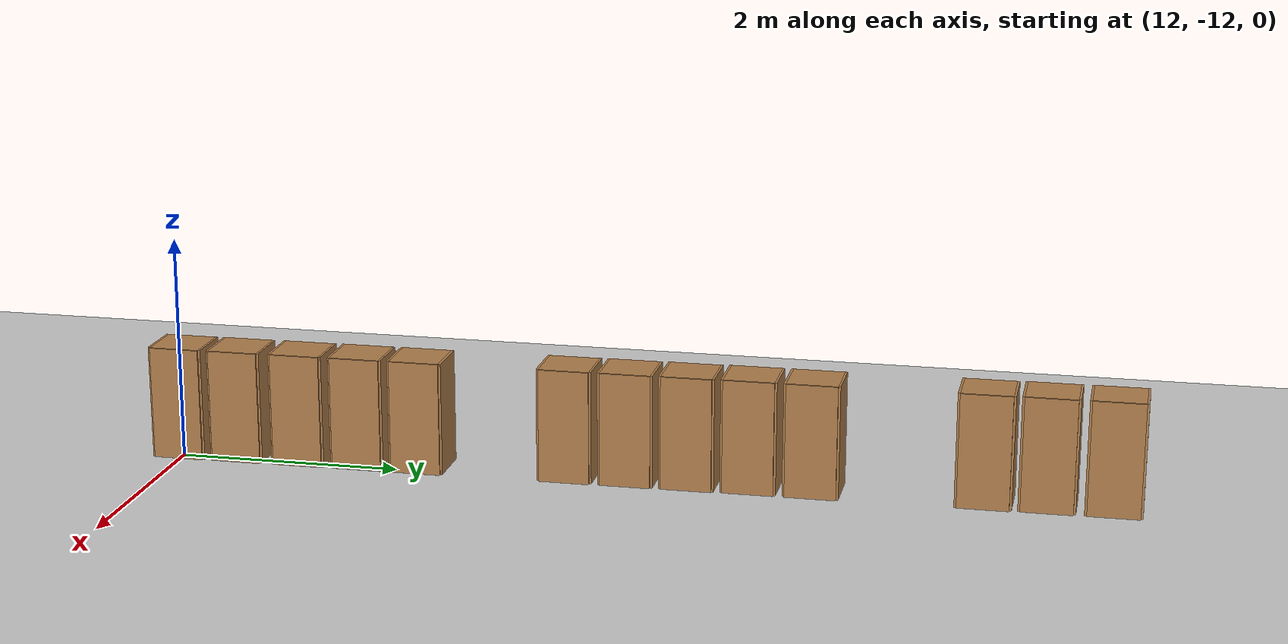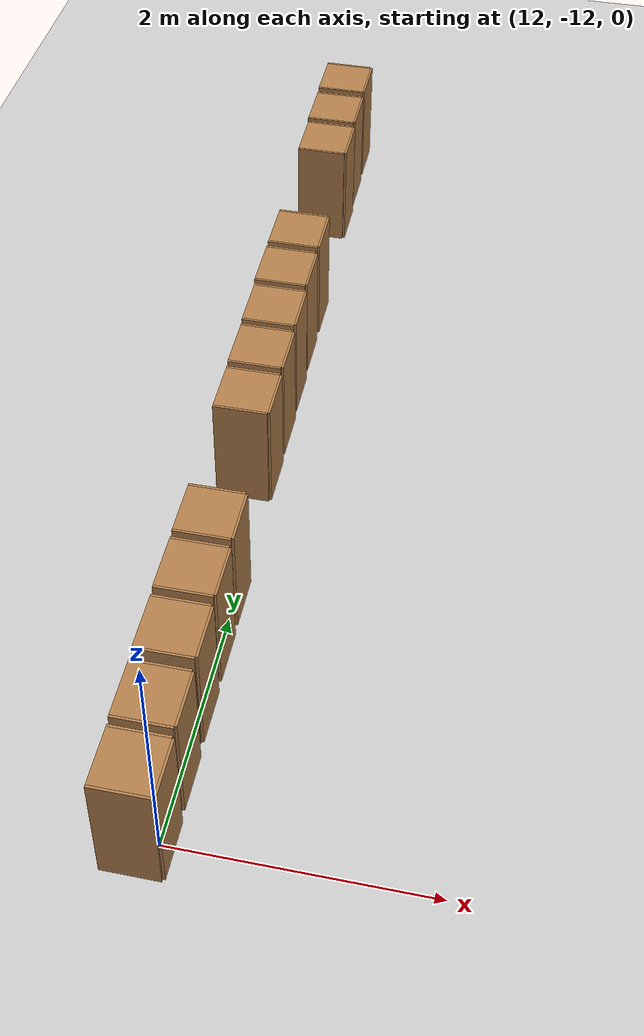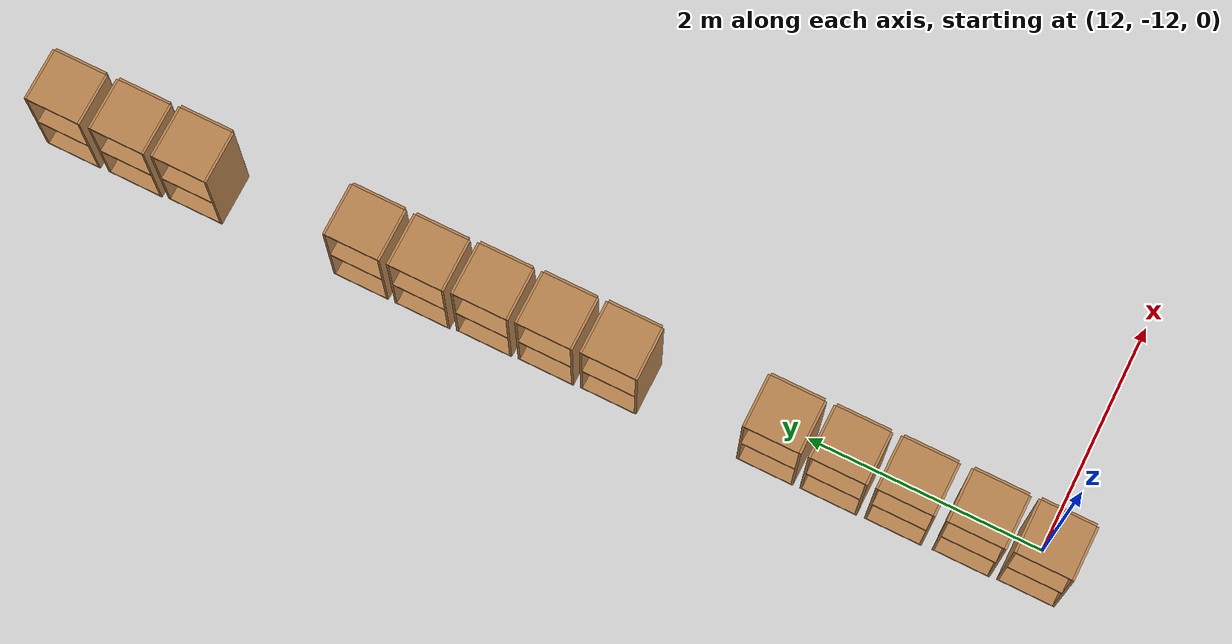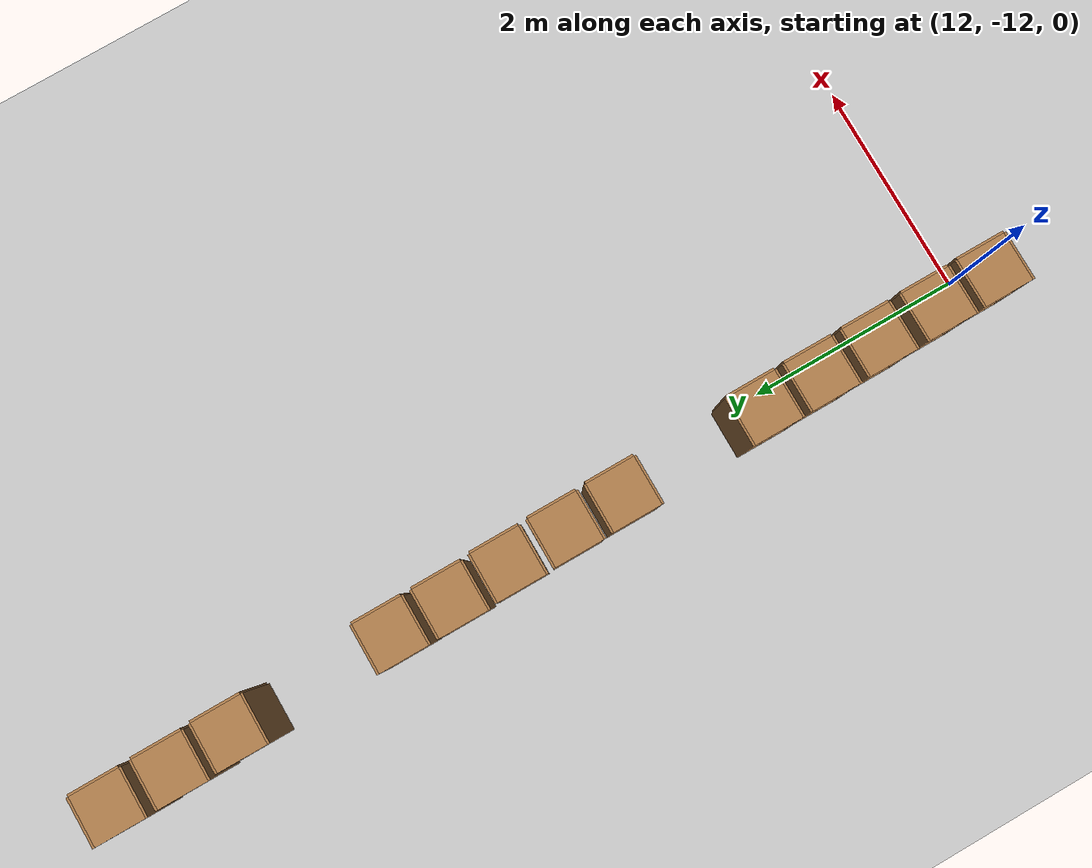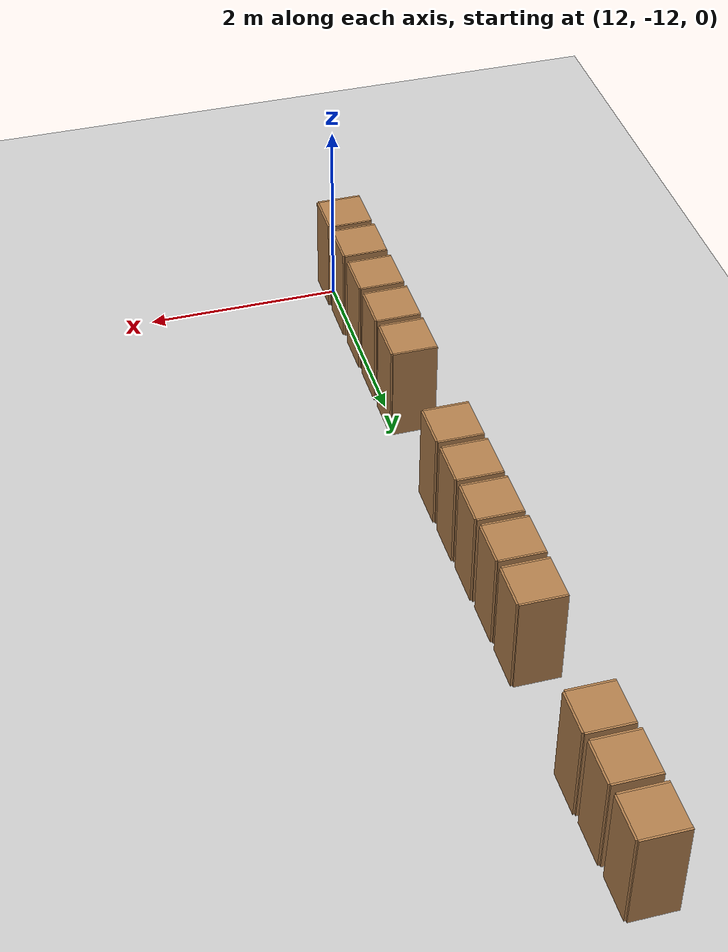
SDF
<sdf version="1.6">
 <world name="default">
  <model name="ground_plane">
   <static>1</static>
   <link name="link">
    <collision name="collision">
     <geometry><plane><normal>0 0 1</normal><size>100 100</size></plane></geometry>
     <surface><friction><ode><mu>100</mu><mu2>50</mu2></ode></friction></surface>
    </collision>
    <visual name="visual">
     <cast_shadows>0</cast_shadows>
     <geometry><plane><normal>0 0 1</normal><size>100 100</size></plane></geometry>
     <material>
      <script><uri>file://media/materials/scripts/gazebo.material</uri><name>Gazebo/Grey</name></script>
     </material>
    </visual>
   </link>
  </model>
  <model name="cabinet">
   <static>1</static>
   <link name="cabinet_bottom_plate">
    <inertial>
     <pose>0 0 -1 0 -0 0</pose>
     <inertia><ixx>2.05</ixx><ixy>0</ixy><ixz>0</ixz><iyy>2.05</iyy><iyz>0</iyz><izz>2.05</izz></inertia>
     <mass>25</mass>
    </inertial>
    <collision name="cabinet_bottom_plate_geom">
     <pose>0 0 0.01 0 -0 0</pose>
     <geometry><box><size>0.45 0.45 0.02</size></box></geometry>
    </collision>
    <visual name="cabinet_bottom_plate_geom_visual">
     <pose>0 0 0.01 0 -0 0</pose>
     <geometry><box><size>0.45 0.45 0.02</size></box></geometry>
     <material>
      <script><uri>file://media/materials/scripts/gazebo.material</uri><name>Gazebo/Wood</name></script>
     </material>
    </visual>
    <collision name="cabinet_bottom_plate_geom_cabinet_back_plate">
     <pose>0.235 0 0.51 0 -0 0</pose>
     <geometry><box><size>0.02 0.45 1.02</size></box></geometry>
    </collision>
    <visual name="cabinet_bottom_plate_geom_cabinet_back_plate_visual">
     <pose>0.235 0 0.51 0 -0 0</pose>
     <geometry><box><size>0.02 0.45 1.02</size></box></geometry>
     <material>
      <script><uri>file://media/materials/scripts/gazebo.material</uri><name>Gazebo/Wood</name></script>
     </material>
    </visual>
    <collision name="cabinet_bottom_plate_geom_cabinet_left_plate">
     <pose>0 0.235 0.51 0 -0 0</pose>
     <geometry><box><size>0.45 0.02 1.02</size></box></geometry>
    </collision>
    <visual name="cabinet_bottom_plate_geom_cabinet_left_plate_visual">
     <pose>0 0.235 0.51 0 -0 0</pose>
     <geometry><box><size>0.45 0.02 1.02</size></box></geometry>
     <material>
      <script><uri>file://media/materials/scripts/gazebo.material</uri><name>Gazebo/Wood</name></script>
     </material>
    </visual>
    <collision name="cabinet_bottom_plate_geom_cabinet_middle_plate">
     <pose>0 0 0.51 0 -0 0</pose>
     <geometry><box><size>0.45 0.45 0.02</size></box></geometry>
    </collision>
    <visual name="cabinet_bottom_plate_geom_cabinet_middle_plate_visual">
     <pose>0 0 0.51 0 -0 0</pose>
     <geometry><box><size>0.45 0.45 0.02</size></box></geometry>
     <material>
      <script><uri>file://media/materials/scripts/gazebo.material</uri><name>Gazebo/Wood</name></script>
     </material>
    </visual>
    <collision name="cabinet_bottom_plate_geom_cabinet_right_plate">
     <pose>0 -0.235 0.51 0 -0 0</pose>
     <geometry><box><size>0.45 0.02 1.02</size></box></geometry>
    </collision>
    <visual name="cabinet_bottom_plate_geom_cabinet_right_plate_visual">
     <pose>0 -0.235 0.51 0 -0 0</pose>
     <geometry><box><size>0.45 0.02 1.02</size></box></geometry>
     <material>
      <script><uri>file://media/materials/scripts/gazebo.material</uri><name>Gazebo/Wood</name></script>
     </material>
    </visual>
    <collision name="cabinet_bottom_plate_geom_cabinet_top_plate">
     <pose>0 0 1.01 0 -0 0</pose>
     <geometry><box><size>0.45 0.45 0.02</size></box></geometry>
    </collision>
    <visual name="cabinet_bottom_plate_geom_cabinet_top_plate_visual">
     <pose>0 0 1.01 0 -0 0</pose>
     <geometry><box><size>0.45 0.45 0.02</size></box></geometry>
     <material>
      <script><uri>file://media/materials/scripts/gazebo.material</uri><name>Gazebo/Wood</name></script>
     </material>
    </visual>
   </link>
   <pose>11.8643 -12.0202 0 0 -0 0</pose>
  </model>
  <model name="cabinet_clone">
   <static>1</static>
   <link name="cabinet_bottom_plate">
    <inertial>
     <pose>0 0 -1 0 -0 0</pose>
     <inertia><ixx>2.05</ixx><ixy>0</ixy><ixz>0</ixz><iyy>2.05</iyy><iyz>0</iyz><izz>2.05</izz></inertia>
     <mass>25</mass>
    </inertial>
    <collision name="cabinet_bottom_plate_geom">
     <pose>0 0 0.01 0 -0 0</pose>
     <geometry><box><size>0.45 0.45 0.02</size></box></geometry>
    </collision>
    <visual name="cabinet_bottom_plate_geom_visual">
     <pose>0 0 0.01 0 -0 0</pose>
     <geometry><box><size>0.45 0.45 0.02</size></box></geometry>
     <material>
      <script><uri>file://media/materials/scripts/gazebo.material</uri><name>Gazebo/Wood</name></script>
     </material>
    </visual>
    <collision name="cabinet_bottom_plate_geom_cabinet_back_plate">
     <pose>0.235 0 0.51 0 -0 0</pose>
     <geometry><box><size>0.02 0.45 1.02</size></box></geometry>
    </collision>
    <visual name="cabinet_bottom_plate_geom_cabinet_back_plate_visual">
     <pose>0.235 0 0.51 0 -0 0</pose>
     <geometry><box><size>0.02 0.45 1.02</size></box></geometry>
     <material>
      <script><uri>file://media/materials/scripts/gazebo.material</uri><name>Gazebo/Wood</name></script>
     </material>
    </visual>
    <collision name="cabinet_bottom_plate_geom_cabinet_left_plate">
     <pose>0 0.235 0.51 0 -0 0</pose>
     <geometry><box><size>0.45 0.02 1.02</size></box></geometry>
    </collision>
    <visual name="cabinet_bottom_plate_geom_cabinet_left_plate_visual">
     <pose>0 0.235 0.51 0 -0 0</pose>
     <geometry><box><size>0.45 0.02 1.02</size></box></geometry>
     <material>
      <script><uri>file://media/materials/scripts/gazebo.material</uri><name>Gazebo/Wood</name></script>
     </material>
    </visual>
    <collision name="cabinet_bottom_plate_geom_cabinet_middle_plate">
     <pose>0 0 0.51 0 -0 0</pose>
     <geometry><box><size>0.45 0.45 0.02</size></box></geometry>
    </collision>
    <visual name="cabinet_bottom_plate_geom_cabinet_middle_plate_visual">
     <pose>0 0 0.51 0 -0 0</pose>
     <geometry><box><size>0.45 0.45 0.02</size></box></geometry>
     <material>
      <script><uri>file://media/materials/scripts/gazebo.material</uri><name>Gazebo/Wood</name></script>
     </material>
    </visual>
    <collision name="cabinet_bottom_plate_geom_cabinet_right_plate">
     <pose>0 -0.235 0.51 0 -0 0</pose>
     <geometry><box><size>0.45 0.02 1.02</size></box></geometry>
    </collision>
    <visual name="cabinet_bottom_plate_geom_cabinet_right_plate_visual">
     <pose>0 -0.235 0.51 0 -0 0</pose>
     <geometry><box><size>0.45 0.02 1.02</size></box></geometry>
     <material>
      <script><uri>file://media/materials/scripts/gazebo.material</uri><name>Gazebo/Wood</name></script>
     </material>
    </visual>
    <collision name="cabinet_bottom_plate_geom_cabinet_top_plate">
     <pose>0 0 1.01 0 -0 0</pose>
     <geometry><box><size>0.45 0.45 0.02</size></box></geometry>
    </collision>
    <visual name="cabinet_bottom_plate_geom_cabinet_top_plate_visual">
     <pose>0 0 1.01 0 -0 0</pose>
     <geometry><box><size>0.45 0.45 0.02</size></box></geometry>
     <material>
      <script><uri>file://media/materials/scripts/gazebo.material</uri><name>Gazebo/Wood</name></script>
     </material>
    </visual>
   </link>
   <pose>11.8544 -11.4772 0 0 -0 0</pose>
  </model>
  <model name="cabinet_clone_0">
   <static>1</static>
   <link name="cabinet_bottom_plate">
    <inertial>
     <pose>0 0 -1 0 -0 0</pose>
     <inertia><ixx>2.05</ixx><ixy>0</ixy><ixz>0</ixz><iyy>2.05</iyy><iyz>0</iyz><izz>2.05</izz></inertia>
     <mass>25</mass>
    </inertial>
    <collision name="cabinet_bottom_plate_geom">
     <pose>0 0 0.01 0 -0 0</pose>
     <geometry><box><size>0.45 0.45 0.02</size></box></geometry>
    </collision>
    <visual name="cabinet_bottom_plate_geom_visual">
     <pose>0 0 0.01 0 -0 0</pose>
     <geometry><box><size>0.45 0.45 0.02</size></box></geometry>
     <material>
      <script><uri>file://media/materials/scripts/gazebo.material</uri><name>Gazebo/Wood</name></script>
     </material>
    </visual>
    <collision name="cabinet_bottom_plate_geom_cabinet_back_plate">
     <pose>0.235 0 0.51 0 -0 0</pose>
     <geometry><box><size>0.02 0.45 1.02</size></box></geometry>
    </collision>
    <visual name="cabinet_bottom_plate_geom_cabinet_back_plate_visual">
     <pose>0.235 0 0.51 0 -0 0</pose>
     <geometry><box><size>0.02 0.45 1.02</size></box></geometry>
     <material>
      <script><uri>file://media/materials/scripts/gazebo.material</uri><name>Gazebo/Wood</name></script>
     </material>
    </visual>
    <collision name="cabinet_bottom_plate_geom_cabinet_left_plate">
     <pose>0 0.235 0.51 0 -0 0</pose>
     <geometry><box><size>0.45 0.02 1.02</size></box></geometry>
    </collision>
    <visual name="cabinet_bottom_plate_geom_cabinet_left_plate_visual">
     <pose>0 0.235 0.51 0 -0 0</pose>
     <geometry><box><size>0.45 0.02 1.02</size></box></geometry>
     <material>
      <script><uri>file://media/materials/scripts/gazebo.material</uri><name>Gazebo/Wood</name></script>
     </material>
    </visual>
    <collision name="cabinet_bottom_plate_geom_cabinet_middle_plate">
     <pose>0 0 0.51 0 -0 0</pose>
     <geometry><box><size>0.45 0.45 0.02</size></box></geometry>
    </collision>
    <visual name="cabinet_bottom_plate_geom_cabinet_middle_plate_visual">
     <pose>0 0 0.51 0 -0 0</pose>
     <geometry><box><size>0.45 0.45 0.02</size></box></geometry>
     <material>
      <script><uri>file://media/materials/scripts/gazebo.material</uri><name>Gazebo/Wood</name></script>
     </material>
    </visual>
    <collision name="cabinet_bottom_plate_geom_cabinet_right_plate">
     <pose>0 -0.235 0.51 0 -0 0</pose>
     <geometry><box><size>0.45 0.02 1.02</size></box></geometry>
    </collision>
    <visual name="cabinet_bottom_plate_geom_cabinet_right_plate_visual">
     <pose>0 -0.235 0.51 0 -0 0</pose>
     <geometry><box><size>0.45 0.02 1.02</size></box></geometry>
     <material>
      <script><uri>file://media/materials/scripts/gazebo.material</uri><name>Gazebo/Wood</name></script>
     </material>
    </visual>
    <collision name="cabinet_bottom_plate_geom_cabinet_top_plate">
     <pose>0 0 1.01 0 -0 0</pose>
     <geometry><box><size>0.45 0.45 0.02</size></box></geometry>
    </collision>
    <visual name="cabinet_bottom_plate_geom_cabinet_top_plate_visual">
     <pose>0 0 1.01 0 -0 0</pose>
     <geometry><box><size>0.45 0.45 0.02</size></box></geometry>
     <material>
      <script><uri>file://media/materials/scripts/gazebo.material</uri><name>Gazebo/Wood</name></script>
     </material>
    </visual>
   </link>
   <pose>11.8448 -10.9033 0 0 -0 0</pose>
  </model>
  <model name="cabinet_clone_1">
   <static>1</static>
   <link name="cabinet_bottom_plate">
    <inertial>
     <pose>0 0 -1 0 -0 0</pose>
     <inertia><ixx>2.05</ixx><ixy>0</ixy><ixz>0</ixz><iyy>2.05</iyy><iyz>0</iyz><izz>2.05</izz></inertia>
     <mass>25</mass>
    </inertial>
    <collision name="cabinet_bottom_plate_geom">
     <pose>0 0 0.01 0 -0 0</pose>
     <geometry><box><size>0.45 0.45 0.02</size></box></geometry>
    </collision>
    <visual name="cabinet_bottom_plate_geom_visual">
     <pose>0 0 0.01 0 -0 0</pose>
     <geometry><box><size>0.45 0.45 0.02</size></box></geometry>
     <material>
      <script><uri>file://media/materials/scripts/gazebo.material</uri><name>Gazebo/Wood</name></script>
     </material>
    </visual>
    <collision name="cabinet_bottom_plate_geom_cabinet_back_plate">
     <pose>0.235 0 0.51 0 -0 0</pose>
     <geometry><box><size>0.02 0.45 1.02</size></box></geometry>
    </collision>
    <visual name="cabinet_bottom_plate_geom_cabinet_back_plate_visual">
     <pose>0.235 0 0.51 0 -0 0</pose>
     <geometry><box><size>0.02 0.45 1.02</size></box></geometry>
     <material>
      <script><uri>file://media/materials/scripts/gazebo.material</uri><name>Gazebo/Wood</name></script>
     </material>
    </visual>
    <collision name="cabinet_bottom_plate_geom_cabinet_left_plate">
     <pose>0 0.235 0.51 0 -0 0</pose>
     <geometry><box><size>0.45 0.02 1.02</size></box></geometry>
    </collision>
    <visual name="cabinet_bottom_plate_geom_cabinet_left_plate_visual">
     <pose>0 0.235 0.51 0 -0 0</pose>
     <geometry><box><size>0.45 0.02 1.02</size></box></geometry>
     <material>
      <script><uri>file://media/materials/scripts/gazebo.material</uri><name>Gazebo/Wood</name></script>
     </material>
    </visual>
    <collision name="cabinet_bottom_plate_geom_cabinet_middle_plate">
     <pose>0 0 0.51 0 -0 0</pose>
     <geometry><box><size>0.45 0.45 0.02</size></box></geometry>
    </collision>
    <visual name="cabinet_bottom_plate_geom_cabinet_middle_plate_visual">
     <pose>0 0 0.51 0 -0 0</pose>
     <geometry><box><size>0.45 0.45 0.02</size></box></geometry>
     <material>
      <script><uri>file://media/materials/scripts/gazebo.material</uri><name>Gazebo/Wood</name></script>
     </material>
    </visual>
    <collision name="cabinet_bottom_plate_geom_cabinet_right_plate">
     <pose>0 -0.235 0.51 0 -0 0</pose>
     <geometry><box><size>0.45 0.02 1.02</size></box></geometry>
    </collision>
    <visual name="cabinet_bottom_plate_geom_cabinet_right_plate_visual">
     <pose>0 -0.235 0.51 0 -0 0</pose>
     <geometry><box><size>0.45 0.02 1.02</size></box></geometry>
     <material>
      <script><uri>file://media/materials/scripts/gazebo.material</uri><name>Gazebo/Wood</name></script>
     </material>
    </visual>
    <collision name="cabinet_bottom_plate_geom_cabinet_top_plate">
     <pose>0 0 1.01 0 -0 0</pose>
     <geometry><box><size>0.45 0.45 0.02</size></box></geometry>
    </collision>
    <visual name="cabinet_bottom_plate_geom_cabinet_top_plate_visual">
     <pose>0 0 1.01 0 -0 0</pose>
     <geometry><box><size>0.45 0.45 0.02</size></box></geometry>
     <material>
      <script><uri>file://media/materials/scripts/gazebo.material</uri><name>Gazebo/Wood</name></script>
     </material>
    </visual>
   </link>
   <pose>11.8365 -10.3527 0 0 -0 0</pose>
  </model>
  <model name="cabinet_clone_2">
   <static>1</static>
   <link name="cabinet_bottom_plate">
    <inertial>
     <pose>0 0 -1 0 -0 0</pose>
     <inertia><ixx>2.05</ixx><ixy>0</ixy><ixz>0</ixz><iyy>2.05</iyy><iyz>0</iyz><izz>2.05</izz></inertia>
     <mass>25</mass>
    </inertial>
    <collision name="cabinet_bottom_plate_geom">
     <pose>0 0 0.01 0 -0 0</pose>
     <geometry><box><size>0.45 0.45 0.02</size></box></geometry>
    </collision>
    <visual name="cabinet_bottom_plate_geom_visual">
     <pose>0 0 0.01 0 -0 0</pose>
     <geometry><box><size>0.45 0.45 0.02</size></box></geometry>
     <material>
      <script><uri>file://media/materials/scripts/gazebo.material</uri><name>Gazebo/Wood</name></script>
     </material>
    </visual>
    <collision name="cabinet_bottom_plate_geom_cabinet_back_plate">
     <pose>0.235 0 0.51 0 -0 0</pose>
     <geometry><box><size>0.02 0.45 1.02</size></box></geometry>
    </collision>
    <visual name="cabinet_bottom_plate_geom_cabinet_back_plate_visual">
     <pose>0.235 0 0.51 0 -0 0</pose>
     <geometry><box><size>0.02 0.45 1.02</size></box></geometry>
     <material>
      <script><uri>file://media/materials/scripts/gazebo.material</uri><name>Gazebo/Wood</name></script>
     </material>
    </visual>
    <collision name="cabinet_bottom_plate_geom_cabinet_left_plate">
     <pose>0 0.235 0.51 0 -0 0</pose>
     <geometry><box><size>0.45 0.02 1.02</size></box></geometry>
    </collision>
    <visual name="cabinet_bottom_plate_geom_cabinet_left_plate_visual">
     <pose>0 0.235 0.51 0 -0 0</pose>
     <geometry><box><size>0.45 0.02 1.02</size></box></geometry>
     <material>
      <script><uri>file://media/materials/scripts/gazebo.material</uri><name>Gazebo/Wood</name></script>
     </material>
    </visual>
    <collision name="cabinet_bottom_plate_geom_cabinet_middle_plate">
     <pose>0 0 0.51 0 -0 0</pose>
     <geometry><box><size>0.45 0.45 0.02</size></box></geometry>
    </collision>
    <visual name="cabinet_bottom_plate_geom_cabinet_middle_plate_visual">
     <pose>0 0 0.51 0 -0 0</pose>
     <geometry><box><size>0.45 0.45 0.02</size></box></geometry>
     <material>
      <script><uri>file://media/materials/scripts/gazebo.material</uri><name>Gazebo/Wood</name></script>
     </material>
    </visual>
    <collision name="cabinet_bottom_plate_geom_cabinet_right_plate">
     <pose>0 -0.235 0.51 0 -0 0</pose>
     <geometry><box><size>0.45 0.02 1.02</size></box></geometry>
    </collision>
    <visual name="cabinet_bottom_plate_geom_cabinet_right_plate_visual">
     <pose>0 -0.235 0.51 0 -0 0</pose>
     <geometry><box><size>0.45 0.02 1.02</size></box></geometry>
     <material>
      <script><uri>file://media/materials/scripts/gazebo.material</uri><name>Gazebo/Wood</name></script>
     </material>
    </visual>
    <collision name="cabinet_bottom_plate_geom_cabinet_top_plate">
     <pose>0 0 1.01 0 -0 0</pose>
     <geometry><box><size>0.45 0.45 0.02</size></box></geometry>
    </collision>
    <visual name="cabinet_bottom_plate_geom_cabinet_top_plate_visual">
     <pose>0 0 1.01 0 -0 0</pose>
     <geometry><box><size>0.45 0.45 0.02</size></box></geometry>
     <material>
      <script><uri>file://media/materials/scripts/gazebo.material</uri><name>Gazebo/Wood</name></script>
     </material>
    </visual>
   </link>
   <pose>11.8308 -9.80863 0 0 -0 0</pose>
  </model>
  <model name="cabinet_clone_3">
   <static>1</static>
   <link name="cabinet_bottom_plate">
    <inertial>
     <pose>0 0 -1 0 -0 0</pose>
     <inertia><ixx>2.05</ixx><ixy>0</ixy><ixz>0</ixz><iyy>2.05</iyy><iyz>0</iyz><izz>2.05</izz></inertia>
     <mass>25</mass>
    </inertial>
    <collision name="cabinet_bottom_plate_geom">
     <pose>0 0 0.01 0 -0 0</pose>
     <geometry><box><size>0.45 0.45 0.02</size></box></geometry>
    </collision>
    <visual name="cabinet_bottom_plate_geom_visual">
     <pose>0 0 0.01 0 -0 0</pose>
     <geometry><box><size>0.45 0.45 0.02</size></box></geometry>
     <material>
      <script><uri>file://media/materials/scripts/gazebo.material</uri><name>Gazebo/Wood</name></script>
     </material>
    </visual>
    <collision name="cabinet_bottom_plate_geom_cabinet_back_plate">
     <pose>0.235 0 0.51 0 -0 0</pose>
     <geometry><box><size>0.02 0.45 1.02</size></box></geometry>
    </collision>
    <visual name="cabinet_bottom_plate_geom_cabinet_back_plate_visual">
     <pose>0.235 0 0.51 0 -0 0</pose>
     <geometry><box><size>0.02 0.45 1.02</size></box></geometry>
     <material>
      <script><uri>file://media/materials/scripts/gazebo.material</uri><name>Gazebo/Wood</name></script>
     </material>
    </visual>
    <collision name="cabinet_bottom_plate_geom_cabinet_left_plate">
     <pose>0 0.235 0.51 0 -0 0</pose>
     <geometry><box><size>0.45 0.02 1.02</size></box></geometry>
    </collision>
    <visual name="cabinet_bottom_plate_geom_cabinet_left_plate_visual">
     <pose>0 0.235 0.51 0 -0 0</pose>
     <geometry><box><size>0.45 0.02 1.02</size></box></geometry>
     <material>
      <script><uri>file://media/materials/scripts/gazebo.material</uri><name>Gazebo/Wood</name></script>
     </material>
    </visual>
    <collision name="cabinet_bottom_plate_geom_cabinet_middle_plate">
     <pose>0 0 0.51 0 -0 0</pose>
     <geometry><box><size>0.45 0.45 0.02</size></box></geometry>
    </collision>
    <visual name="cabinet_bottom_plate_geom_cabinet_middle_plate_visual">
     <pose>0 0 0.51 0 -0 0</pose>
     <geometry><box><size>0.45 0.45 0.02</size></box></geometry>
     <material>
      <script><uri>file://media/materials/scripts/gazebo.material</uri><name>Gazebo/Wood</name></script>
     </material>
    </visual>
    <collision name="cabinet_bottom_plate_geom_cabinet_right_plate">
     <pose>0 -0.235 0.51 0 -0 0</pose>
     <geometry><box><size>0.45 0.02 1.02</size></box></geometry>
    </collision>
    <visual name="cabinet_bottom_plate_geom_cabinet_right_plate_visual">
     <pose>0 -0.235 0.51 0 -0 0</pose>
     <geometry><box><size>0.45 0.02 1.02</size></box></geometry>
     <material>
      <script><uri>file://media/materials/scripts/gazebo.material</uri><name>Gazebo/Wood</name></script>
     </material>
    </visual>
    <collision name="cabinet_bottom_plate_geom_cabinet_top_plate">
     <pose>0 0 1.01 0 -0 0</pose>
     <geometry><box><size>0.45 0.45 0.02</size></box></geometry>
    </collision>
    <visual name="cabinet_bottom_plate_geom_cabinet_top_plate_visual">
     <pose>0 0 1.01 0 -0 0</pose>
     <geometry><box><size>0.45 0.45 0.02</size></box></geometry>
     <material>
      <script><uri>file://media/materials/scripts/gazebo.material</uri><name>Gazebo/Wood</name></script>
     </material>
    </visual>
   </link>
   <pose>11.797 -8.46545 0 0 -0 0</pose>
  </model>
  <model name="cabinet_clone_4">
   <static>1</static>
   <link name="cabinet_bottom_plate">
    <inertial>
     <pose>0 0 -1 0 -0 0</pose>
     <inertia><ixx>2.05</ixx><ixy>0</ixy><ixz>0</ixz><iyy>2.05</iyy><iyz>0</iyz><izz>2.05</izz></inertia>
     <mass>25</mass>
    </inertial>
    <collision name="cabinet_bottom_plate_geom">
     <pose>0 0 0.01 0 -0 0</pose>
     <geometry><box><size>0.45 0.45 0.02</size></box></geometry>
    </collision>
    <visual name="cabinet_bottom_plate_geom_visual">
     <pose>0 0 0.01 0 -0 0</pose>
     <geometry><box><size>0.45 0.45 0.02</size></box></geometry>
     <material>
      <script><uri>file://media/materials/scripts/gazebo.material</uri><name>Gazebo/Wood</name></script>
     </material>
    </visual>
    <collision name="cabinet_bottom_plate_geom_cabinet_back_plate">
     <pose>0.235 0 0.51 0 -0 0</pose>
     <geometry><box><size>0.02 0.45 1.02</size></box></geometry>
    </collision>
    <visual name="cabinet_bottom_plate_geom_cabinet_back_plate_visual">
     <pose>0.235 0 0.51 0 -0 0</pose>
     <geometry><box><size>0.02 0.45 1.02</size></box></geometry>
     <material>
      <script><uri>file://media/materials/scripts/gazebo.material</uri><name>Gazebo/Wood</name></script>
     </material>
    </visual>
    <collision name="cabinet_bottom_plate_geom_cabinet_left_plate">
     <pose>0 0.235 0.51 0 -0 0</pose>
     <geometry><box><size>0.45 0.02 1.02</size></box></geometry>
    </collision>
    <visual name="cabinet_bottom_plate_geom_cabinet_left_plate_visual">
     <pose>0 0.235 0.51 0 -0 0</pose>
     <geometry><box><size>0.45 0.02 1.02</size></box></geometry>
     <material>
      <script><uri>file://media/materials/scripts/gazebo.material</uri><name>Gazebo/Wood</name></script>
     </material>
    </visual>
    <collision name="cabinet_bottom_plate_geom_cabinet_middle_plate">
     <pose>0 0 0.51 0 -0 0</pose>
     <geometry><box><size>0.45 0.45 0.02</size></box></geometry>
    </collision>
    <visual name="cabinet_bottom_plate_geom_cabinet_middle_plate_visual">
     <pose>0 0 0.51 0 -0 0</pose>
     <geometry><box><size>0.45 0.45 0.02</size></box></geometry>
     <material>
      <script><uri>file://media/materials/scripts/gazebo.material</uri><name>Gazebo/Wood</name></script>
     </material>
    </visual>
    <collision name="cabinet_bottom_plate_geom_cabinet_right_plate">
     <pose>0 -0.235 0.51 0 -0 0</pose>
     <geometry><box><size>0.45 0.02 1.02</size></box></geometry>
    </collision>
    <visual name="cabinet_bottom_plate_geom_cabinet_right_plate_visual">
     <pose>0 -0.235 0.51 0 -0 0</pose>
     <geometry><box><size>0.45 0.02 1.02</size></box></geometry>
     <material>
      <script><uri>file://media/materials/scripts/gazebo.material</uri><name>Gazebo/Wood</name></script>
     </material>
    </visual>
    <collision name="cabinet_bottom_plate_geom_cabinet_top_plate">
     <pose>0 0 1.01 0 -0 0</pose>
     <geometry><box><size>0.45 0.45 0.02</size></box></geometry>
    </collision>
    <visual name="cabinet_bottom_plate_geom_cabinet_top_plate_visual">
     <pose>0 0 1.01 0 -0 0</pose>
     <geometry><box><size>0.45 0.45 0.02</size></box></geometry>
     <material>
      <script><uri>file://media/materials/scripts/gazebo.material</uri><name>Gazebo/Wood</name></script>
     </material>
    </visual>
   </link>
   <pose>11.788 -7.92146 0 0 -0 0</pose>
  </model>
  <model name="cabinet_clone_5">
   <static>1</static>
   <link name="cabinet_bottom_plate">
    <inertial>
     <pose>0 0 -1 0 -0 0</pose>
     <inertia><ixx>2.05</ixx><ixy>0</ixy><ixz>0</ixz><iyy>2.05</iyy><iyz>0</iyz><izz>2.05</izz></inertia>
     <mass>25</mass>
    </inertial>
    <collision name="cabinet_bottom_plate_geom">
     <pose>0 0 0.01 0 -0 0</pose>
     <geometry><box><size>0.45 0.45 0.02</size></box></geometry>
    </collision>
    <visual name="cabinet_bottom_plate_geom_visual">
     <pose>0 0 0.01 0 -0 0</pose>
     <geometry><box><size>0.45 0.45 0.02</size></box></geometry>
     <material>
      <script><uri>file://media/materials/scripts/gazebo.material</uri><name>Gazebo/Wood</name></script>
     </material>
    </visual>
    <collision name="cabinet_bottom_plate_geom_cabinet_back_plate">
     <pose>0.235 0 0.51 0 -0 0</pose>
     <geometry><box><size>0.02 0.45 1.02</size></box></geometry>
    </collision>
    <visual name="cabinet_bottom_plate_geom_cabinet_back_plate_visual">
     <pose>0.235 0 0.51 0 -0 0</pose>
     <geometry><box><size>0.02 0.45 1.02</size></box></geometry>
     <material>
      <script><uri>file://media/materials/scripts/gazebo.material</uri><name>Gazebo/Wood</name></script>
     </material>
    </visual>
    <collision name="cabinet_bottom_plate_geom_cabinet_left_plate">
     <pose>0 0.235 0.51 0 -0 0</pose>
     <geometry><box><size>0.45 0.02 1.02</size></box></geometry>
    </collision>
    <visual name="cabinet_bottom_plate_geom_cabinet_left_plate_visual">
     <pose>0 0.235 0.51 0 -0 0</pose>
     <geometry><box><size>0.45 0.02 1.02</size></box></geometry>
     <material>
      <script><uri>file://media/materials/scripts/gazebo.material</uri><name>Gazebo/Wood</name></script>
     </material>
    </visual>
    <collision name="cabinet_bottom_plate_geom_cabinet_middle_plate">
     <pose>0 0 0.51 0 -0 0</pose>
     <geometry><box><size>0.45 0.45 0.02</size></box></geometry>
    </collision>
    <visual name="cabinet_bottom_plate_geom_cabinet_middle_plate_visual">
     <pose>0 0 0.51 0 -0 0</pose>
     <geometry><box><size>0.45 0.45 0.02</size></box></geometry>
     <material>
      <script><uri>file://media/materials/scripts/gazebo.material</uri><name>Gazebo/Wood</name></script>
     </material>
    </visual>
    <collision name="cabinet_bottom_plate_geom_cabinet_right_plate">
     <pose>0 -0.235 0.51 0 -0 0</pose>
     <geometry><box><size>0.45 0.02 1.02</size></box></geometry>
    </collision>
    <visual name="cabinet_bottom_plate_geom_cabinet_right_plate_visual">
     <pose>0 -0.235 0.51 0 -0 0</pose>
     <geometry><box><size>0.45 0.02 1.02</size></box></geometry>
     <material>
      <script><uri>file://media/materials/scripts/gazebo.material</uri><name>Gazebo/Wood</name></script>
     </material>
    </visual>
    <collision name="cabinet_bottom_plate_geom_cabinet_top_plate">
     <pose>0 0 1.01 0 -0 0</pose>
     <geometry><box><size>0.45 0.45 0.02</size></box></geometry>
    </collision>
    <visual name="cabinet_bottom_plate_geom_cabinet_top_plate_visual">
     <pose>0 0 1.01 0 -0 0</pose>
     <geometry><box><size>0.45 0.45 0.02</size></box></geometry>
     <material>
      <script><uri>file://media/materials/scripts/gazebo.material</uri><name>Gazebo/Wood</name></script>
     </material>
    </visual>
   </link>
   <pose>11.7775 -7.38238 0 0 -0 0</pose>
  </model>
  <model name="cabinet_clone_6">
   <static>1</static>
   <link name="cabinet_bottom_plate">
    <inertial>
     <pose>0 0 -1 0 -0 0</pose>
     <inertia><ixx>2.05</ixx><ixy>0</ixy><ixz>0</ixz><iyy>2.05</iyy><iyz>0</iyz><izz>2.05</izz></inertia>
     <mass>25</mass>
    </inertial>
    <collision name="cabinet_bottom_plate_geom">
     <pose>0 0 0.01 0 -0 0</pose>
     <geometry><box><size>0.45 0.45 0.02</size></box></geometry>
    </collision>
    <visual name="cabinet_bottom_plate_geom_visual">
     <pose>0 0 0.01 0 -0 0</pose>
     <geometry><box><size>0.45 0.45 0.02</size></box></geometry>
     <material>
      <script><uri>file://media/materials/scripts/gazebo.material</uri><name>Gazebo/Wood</name></script>
     </material>
    </visual>
    <collision name="cabinet_bottom_plate_geom_cabinet_back_plate">
     <pose>0.235 0 0.51 0 -0 0</pose>
     <geometry><box><size>0.02 0.45 1.02</size></box></geometry>
    </collision>
    <visual name="cabinet_bottom_plate_geom_cabinet_back_plate_visual">
     <pose>0.235 0 0.51 0 -0 0</pose>
     <geometry><box><size>0.02 0.45 1.02</size></box></geometry>
     <material>
      <script><uri>file://media/materials/scripts/gazebo.material</uri><name>Gazebo/Wood</name></script>
     </material>
    </visual>
    <collision name="cabinet_bottom_plate_geom_cabinet_left_plate">
     <pose>0 0.235 0.51 0 -0 0</pose>
     <geometry><box><size>0.45 0.02 1.02</size></box></geometry>
    </collision>
    <visual name="cabinet_bottom_plate_geom_cabinet_left_plate_visual">
     <pose>0 0.235 0.51 0 -0 0</pose>
     <geometry><box><size>0.45 0.02 1.02</size></box></geometry>
     <material>
      <script><uri>file://media/materials/scripts/gazebo.material</uri><name>Gazebo/Wood</name></script>
     </material>
    </visual>
    <collision name="cabinet_bottom_plate_geom_cabinet_middle_plate">
     <pose>0 0 0.51 0 -0 0</pose>
     <geometry><box><size>0.45 0.45 0.02</size></box></geometry>
    </collision>
    <visual name="cabinet_bottom_plate_geom_cabinet_middle_plate_visual">
     <pose>0 0 0.51 0 -0 0</pose>
     <geometry><box><size>0.45 0.45 0.02</size></box></geometry>
     <material>
      <script><uri>file://media/materials/scripts/gazebo.material</uri><name>Gazebo/Wood</name></script>
     </material>
    </visual>
    <collision name="cabinet_bottom_plate_geom_cabinet_right_plate">
     <pose>0 -0.235 0.51 0 -0 0</pose>
     <geometry><box><size>0.45 0.02 1.02</size></box></geometry>
    </collision>
    <visual name="cabinet_bottom_plate_geom_cabinet_right_plate_visual">
     <pose>0 -0.235 0.51 0 -0 0</pose>
     <geometry><box><size>0.45 0.02 1.02</size></box></geometry>
     <material>
      <script><uri>file://media/materials/scripts/gazebo.material</uri><name>Gazebo/Wood</name></script>
     </material>
    </visual>
    <collision name="cabinet_bottom_plate_geom_cabinet_top_plate">
     <pose>0 0 1.01 0 -0 0</pose>
     <geometry><box><size>0.45 0.45 0.02</size></box></geometry>
    </collision>
    <visual name="cabinet_bottom_plate_geom_cabinet_top_plate_visual">
     <pose>0 0 1.01 0 -0 0</pose>
     <geometry><box><size>0.45 0.45 0.02</size></box></geometry>
     <material>
      <script><uri>file://media/materials/scripts/gazebo.material</uri><name>Gazebo/Wood</name></script>
     </material>
    </visual>
   </link>
   <pose>11.7628 -6.84125 0 0 -0 0</pose>
  </model>
  <model name="cabinet_clone_7">
   <static>1</static>
   <link name="cabinet_bottom_plate">
    <inertial>
     <pose>0 0 -1 0 -0 0</pose>
     <inertia><ixx>2.05</ixx><ixy>0</ixy><ixz>0</ixz><iyy>2.05</iyy><iyz>0</iyz><izz>2.05</izz></inertia>
     <mass>25</mass>
    </inertial>
    <collision name="cabinet_bottom_plate_geom">
     <pose>0 0 0.01 0 -0 0</pose>
     <geometry><box><size>0.45 0.45 0.02</size></box></geometry>
    </collision>
    <visual name="cabinet_bottom_plate_geom_visual">
     <pose>0 0 0.01 0 -0 0</pose>
     <geometry><box><size>0.45 0.45 0.02</size></box></geometry>
     <material>
      <script><uri>file://media/materials/scripts/gazebo.material</uri><name>Gazebo/Wood</name></script>
     </material>
    </visual>
    <collision name="cabinet_bottom_plate_geom_cabinet_back_plate">
     <pose>0.235 0 0.51 0 -0 0</pose>
     <geometry><box><size>0.02 0.45 1.02</size></box></geometry>
    </collision>
    <visual name="cabinet_bottom_plate_geom_cabinet_back_plate_visual">
     <pose>0.235 0 0.51 0 -0 0</pose>
     <geometry><box><size>0.02 0.45 1.02</size></box></geometry>
     <material>
      <script><uri>file://media/materials/scripts/gazebo.material</uri><name>Gazebo/Wood</name></script>
     </material>
    </visual>
    <collision name="cabinet_bottom_plate_geom_cabinet_left_plate">
     <pose>0 0.235 0.51 0 -0 0</pose>
     <geometry><box><size>0.45 0.02 1.02</size></box></geometry>
    </collision>
    <visual name="cabinet_bottom_plate_geom_cabinet_left_plate_visual">
     <pose>0 0.235 0.51 0 -0 0</pose>
     <geometry><box><size>0.45 0.02 1.02</size></box></geometry>
     <material>
      <script><uri>file://media/materials/scripts/gazebo.material</uri><name>Gazebo/Wood</name></script>
     </material>
    </visual>
    <collision name="cabinet_bottom_plate_geom_cabinet_middle_plate">
     <pose>0 0 0.51 0 -0 0</pose>
     <geometry><box><size>0.45 0.45 0.02</size></box></geometry>
    </collision>
    <visual name="cabinet_bottom_plate_geom_cabinet_middle_plate_visual">
     <pose>0 0 0.51 0 -0 0</pose>
     <geometry><box><size>0.45 0.45 0.02</size></box></geometry>
     <material>
      <script><uri>file://media/materials/scripts/gazebo.material</uri><name>Gazebo/Wood</name></script>
     </material>
    </visual>
    <collision name="cabinet_bottom_plate_geom_cabinet_right_plate">
     <pose>0 -0.235 0.51 0 -0 0</pose>
     <geometry><box><size>0.45 0.02 1.02</size></box></geometry>
    </collision>
    <visual name="cabinet_bottom_plate_geom_cabinet_right_plate_visual">
     <pose>0 -0.235 0.51 0 -0 0</pose>
     <geometry><box><size>0.45 0.02 1.02</size></box></geometry>
     <material>
      <script><uri>file://media/materials/scripts/gazebo.material</uri><name>Gazebo/Wood</name></script>
     </material>
    </visual>
    <collision name="cabinet_bottom_plate_geom_cabinet_top_plate">
     <pose>0 0 1.01 0 -0 0</pose>
     <geometry><box><size>0.45 0.45 0.02</size></box></geometry>
    </collision>
    <visual name="cabinet_bottom_plate_geom_cabinet_top_plate_visual">
     <pose>0 0 1.01 0 -0 0</pose>
     <geometry><box><size>0.45 0.45 0.02</size></box></geometry>
     <material>
      <script><uri>file://media/materials/scripts/gazebo.material</uri><name>Gazebo/Wood</name></script>
     </material>
    </visual>
   </link>
   <pose>11.7605 -6.295 0 0 -0 0</pose>
  </model>
  <model name="cabinet_clone_8">
   <static>1</static>
   <link name="cabinet_bottom_plate">
    <inertial>
     <pose>0 0 -1 0 -0 0</pose>
     <inertia><ixx>2.05</ixx><ixy>0</ixy><ixz>0</ixz><iyy>2.05</iyy><iyz>0</iyz><izz>2.05</izz></inertia>
     <mass>25</mass>
    </inertial>
    <collision name="cabinet_bottom_plate_geom">
     <pose>0 0 0.01 0 -0 0</pose>
     <geometry><box><size>0.45 0.45 0.02</size></box></geometry>
    </collision>
    <visual name="cabinet_bottom_plate_geom_visual">
     <pose>0 0 0.01 0 -0 0</pose>
     <geometry><box><size>0.45 0.45 0.02</size></box></geometry>
     <material>
      <script><uri>file://media/materials/scripts/gazebo.material</uri><name>Gazebo/Wood</name></script>
     </material>
    </visual>
    <collision name="cabinet_bottom_plate_geom_cabinet_back_plate">
     <pose>0.235 0 0.51 0 -0 0</pose>
     <geometry><box><size>0.02 0.45 1.02</size></box></geometry>
    </collision>
    <visual name="cabinet_bottom_plate_geom_cabinet_back_plate_visual">
     <pose>0.235 0 0.51 0 -0 0</pose>
     <geometry><box><size>0.02 0.45 1.02</size></box></geometry>
     <material>
      <script><uri>file://media/materials/scripts/gazebo.material</uri><name>Gazebo/Wood</name></script>
     </material>
    </visual>
    <collision name="cabinet_bottom_plate_geom_cabinet_left_plate">
     <pose>0 0.235 0.51 0 -0 0</pose>
     <geometry><box><size>0.45 0.02 1.02</size></box></geometry>
    </collision>
    <visual name="cabinet_bottom_plate_geom_cabinet_left_plate_visual">
     <pose>0 0.235 0.51 0 -0 0</pose>
     <geometry><box><size>0.45 0.02 1.02</size></box></geometry>
     <material>
      <script><uri>file://media/materials/scripts/gazebo.material</uri><name>Gazebo/Wood</name></script>
     </material>
    </visual>
    <collision name="cabinet_bottom_plate_geom_cabinet_middle_plate">
     <pose>0 0 0.51 0 -0 0</pose>
     <geometry><box><size>0.45 0.45 0.02</size></box></geometry>
    </collision>
    <visual name="cabinet_bottom_plate_geom_cabinet_middle_plate_visual">
     <pose>0 0 0.51 0 -0 0</pose>
     <geometry><box><size>0.45 0.45 0.02</size></box></geometry>
     <material>
      <script><uri>file://media/materials/scripts/gazebo.material</uri><name>Gazebo/Wood</name></script>
     </material>
    </visual>
    <collision name="cabinet_bottom_plate_geom_cabinet_right_plate">
     <pose>0 -0.235 0.51 0 -0 0</pose>
     <geometry><box><size>0.45 0.02 1.02</size></box></geometry>
    </collision>
    <visual name="cabinet_bottom_plate_geom_cabinet_right_plate_visual">
     <pose>0 -0.235 0.51 0 -0 0</pose>
     <geometry><box><size>0.45 0.02 1.02</size></box></geometry>
     <material>
      <script><uri>file://media/materials/scripts/gazebo.material</uri><name>Gazebo/Wood</name></script>
     </material>
    </visual>
    <collision name="cabinet_bottom_plate_geom_cabinet_top_plate">
     <pose>0 0 1.01 0 -0 0</pose>
     <geometry><box><size>0.45 0.45 0.02</size></box></geometry>
    </collision>
    <visual name="cabinet_bottom_plate_geom_cabinet_top_plate_visual">
     <pose>0 0 1.01 0 -0 0</pose>
     <geometry><box><size>0.45 0.45 0.02</size></box></geometry>
     <material>
      <script><uri>file://media/materials/scripts/gazebo.material</uri><name>Gazebo/Wood</name></script>
     </material>
    </visual>
   </link>
   <pose>11.7235 -4.8178 0 0 -0 0</pose>
  </model>
  <model name="cabinet_clone_9">
   <static>1</static>
   <link name="cabinet_bottom_plate">
    <inertial>
     <pose>0 0 -1 0 -0 0</pose>
     <inertia><ixx>2.05</ixx><ixy>0</ixy><ixz>0</ixz><iyy>2.05</iyy><iyz>0</iyz><izz>2.05</izz></inertia>
     <mass>25</mass>
    </inertial>
    <collision name="cabinet_bottom_plate_geom">
     <pose>0 0 0.01 0 -0 0</pose>
     <geometry><box><size>0.45 0.45 0.02</size></box></geometry>
    </collision>
    <visual name="cabinet_bottom_plate_geom_visual">
     <pose>0 0 0.01 0 -0 0</pose>
     <geometry><box><size>0.45 0.45 0.02</size></box></geometry>
     <material>
      <script><uri>file://media/materials/scripts/gazebo.material</uri><name>Gazebo/Wood</name></script>
     </material>
    </visual>
    <collision name="cabinet_bottom_plate_geom_cabinet_back_plate">
     <pose>0.235 0 0.51 0 -0 0</pose>
     <geometry><box><size>0.02 0.45 1.02</size></box></geometry>
    </collision>
    <visual name="cabinet_bottom_plate_geom_cabinet_back_plate_visual">
     <pose>0.235 0 0.51 0 -0 0</pose>
     <geometry><box><size>0.02 0.45 1.02</size></box></geometry>
     <material>
      <script><uri>file://media/materials/scripts/gazebo.material</uri><name>Gazebo/Wood</name></script>
     </material>
    </visual>
    <collision name="cabinet_bottom_plate_geom_cabinet_left_plate">
     <pose>0 0.235 0.51 0 -0 0</pose>
     <geometry><box><size>0.45 0.02 1.02</size></box></geometry>
    </collision>
    <visual name="cabinet_bottom_plate_geom_cabinet_left_plate_visual">
     <pose>0 0.235 0.51 0 -0 0</pose>
     <geometry><box><size>0.45 0.02 1.02</size></box></geometry>
     <material>
      <script><uri>file://media/materials/scripts/gazebo.material</uri><name>Gazebo/Wood</name></script>
     </material>
    </visual>
    <collision name="cabinet_bottom_plate_geom_cabinet_middle_plate">
     <pose>0 0 0.51 0 -0 0</pose>
     <geometry><box><size>0.45 0.45 0.02</size></box></geometry>
    </collision>
    <visual name="cabinet_bottom_plate_geom_cabinet_middle_plate_visual">
     <pose>0 0 0.51 0 -0 0</pose>
     <geometry><box><size>0.45 0.45 0.02</size></box></geometry>
     <material>
      <script><uri>file://media/materials/scripts/gazebo.material</uri><name>Gazebo/Wood</name></script>
     </material>
    </visual>
    <collision name="cabinet_bottom_plate_geom_cabinet_right_plate">
     <pose>0 -0.235 0.51 0 -0 0</pose>
     <geometry><box><size>0.45 0.02 1.02</size></box></geometry>
    </collision>
    <visual name="cabinet_bottom_plate_geom_cabinet_right_plate_visual">
     <pose>0 -0.235 0.51 0 -0 0</pose>
     <geometry><box><size>0.45 0.02 1.02</size></box></geometry>
     <material>
      <script><uri>file://media/materials/scripts/gazebo.material</uri><name>Gazebo/Wood</name></script>
     </material>
    </visual>
    <collision name="cabinet_bottom_plate_geom_cabinet_top_plate">
     <pose>0 0 1.01 0 -0 0</pose>
     <geometry><box><size>0.45 0.45 0.02</size></box></geometry>
    </collision>
    <visual name="cabinet_bottom_plate_geom_cabinet_top_plate_visual">
     <pose>0 0 1.01 0 -0 0</pose>
     <geometry><box><size>0.45 0.45 0.02</size></box></geometry>
     <material>
      <script><uri>file://media/materials/scripts/gazebo.material</uri><name>Gazebo/Wood</name></script>
     </material>
    </visual>
   </link>
   <pose>11.7091 -4.27933 0 0 -0 0</pose>
  </model>
  <model name="cabinet_clone_10">
   <static>1</static>
   <link name="cabinet_bottom_plate">
    <inertial>
     <pose>0 0 -1 0 -0 0</pose>
     <inertia><ixx>2.05</ixx><ixy>0</ixy><ixz>0</ixz><iyy>2.05</iyy><iyz>0</iyz><izz>2.05</izz></inertia>
     <mass>25</mass>
    </inertial>
    <collision name="cabinet_bottom_plate_geom">
     <pose>0 0 0.01 0 -0 0</pose>
     <geometry><box><size>0.45 0.45 0.02</size></box></geometry>
    </collision>
    <visual name="cabinet_bottom_plate_geom_visual">
     <pose>0 0 0.01 0 -0 0</pose>
     <geometry><box><size>0.45 0.45 0.02</size></box></geometry>
     <material>
      <script><uri>file://media/materials/scripts/gazebo.material</uri><name>Gazebo/Wood</name></script>
     </material>
    </visual>
    <collision name="cabinet_bottom_plate_geom_cabinet_back_plate">
     <pose>0.235 0 0.51 0 -0 0</pose>
     <geometry><box><size>0.02 0.45 1.02</size></box></geometry>
    </collision>
    <visual name="cabinet_bottom_plate_geom_cabinet_back_plate_visual">
     <pose>0.235 0 0.51 0 -0 0</pose>
     <geometry><box><size>0.02 0.45 1.02</size></box></geometry>
     <material>
      <script><uri>file://media/materials/scripts/gazebo.material</uri><name>Gazebo/Wood</name></script>
     </material>
    </visual>
    <collision name="cabinet_bottom_plate_geom_cabinet_left_plate">
     <pose>0 0.235 0.51 0 -0 0</pose>
     <geometry><box><size>0.45 0.02 1.02</size></box></geometry>
    </collision>
    <visual name="cabinet_bottom_plate_geom_cabinet_left_plate_visual">
     <pose>0 0.235 0.51 0 -0 0</pose>
     <geometry><box><size>0.45 0.02 1.02</size></box></geometry>
     <material>
      <script><uri>file://media/materials/scripts/gazebo.material</uri><name>Gazebo/Wood</name></script>
     </material>
    </visual>
    <collision name="cabinet_bottom_plate_geom_cabinet_middle_plate">
     <pose>0 0 0.51 0 -0 0</pose>
     <geometry><box><size>0.45 0.45 0.02</size></box></geometry>
    </collision>
    <visual name="cabinet_bottom_plate_geom_cabinet_middle_plate_visual">
     <pose>0 0 0.51 0 -0 0</pose>
     <geometry><box><size>0.45 0.45 0.02</size></box></geometry>
     <material>
      <script><uri>file://media/materials/scripts/gazebo.material</uri><name>Gazebo/Wood</name></script>
     </material>
    </visual>
    <collision name="cabinet_bottom_plate_geom_cabinet_right_plate">
     <pose>0 -0.235 0.51 0 -0 0</pose>
     <geometry><box><size>0.45 0.02 1.02</size></box></geometry>
    </collision>
    <visual name="cabinet_bottom_plate_geom_cabinet_right_plate_visual">
     <pose>0 -0.235 0.51 0 -0 0</pose>
     <geometry><box><size>0.45 0.02 1.02</size></box></geometry>
     <material>
      <script><uri>file://media/materials/scripts/gazebo.material</uri><name>Gazebo/Wood</name></script>
     </material>
    </visual>
    <collision name="cabinet_bottom_plate_geom_cabinet_top_plate">
     <pose>0 0 1.01 0 -0 0</pose>
     <geometry><box><size>0.45 0.45 0.02</size></box></geometry>
    </collision>
    <visual name="cabinet_bottom_plate_geom_cabinet_top_plate_visual">
     <pose>0 0 1.01 0 -0 0</pose>
     <geometry><box><size>0.45 0.45 0.02</size></box></geometry>
     <material>
      <script><uri>file://media/materials/scripts/gazebo.material</uri><name>Gazebo/Wood</name></script>
     </material>
    </visual>
   </link>
   <pose>11.7017 -3.71897 0 0 -0 0</pose>
  </model>
 </world>
</sdf>
